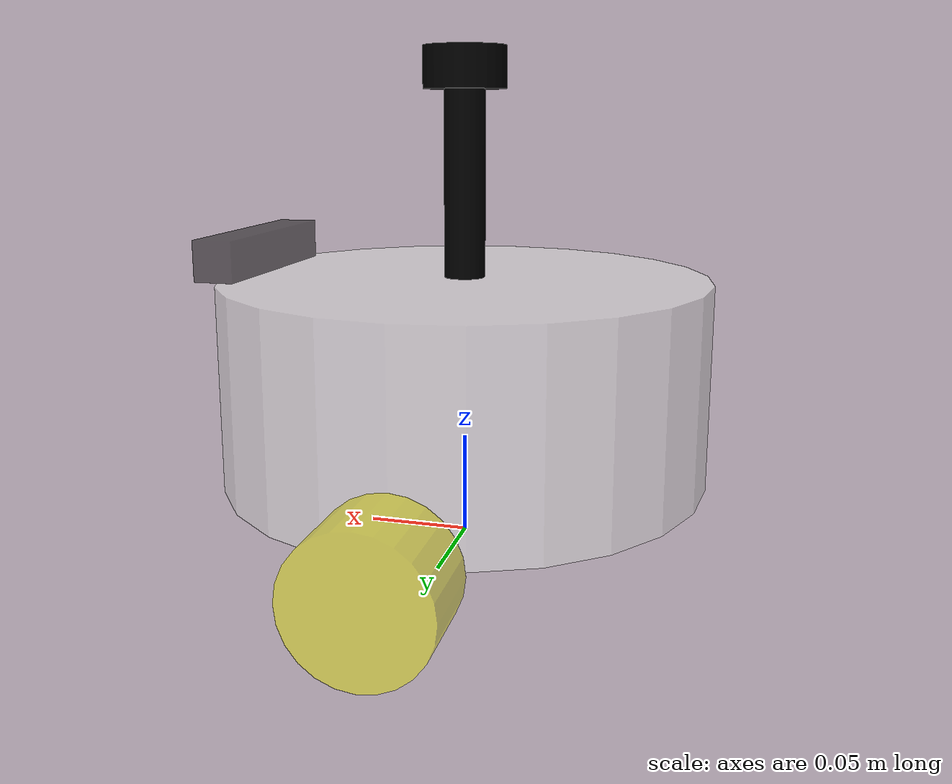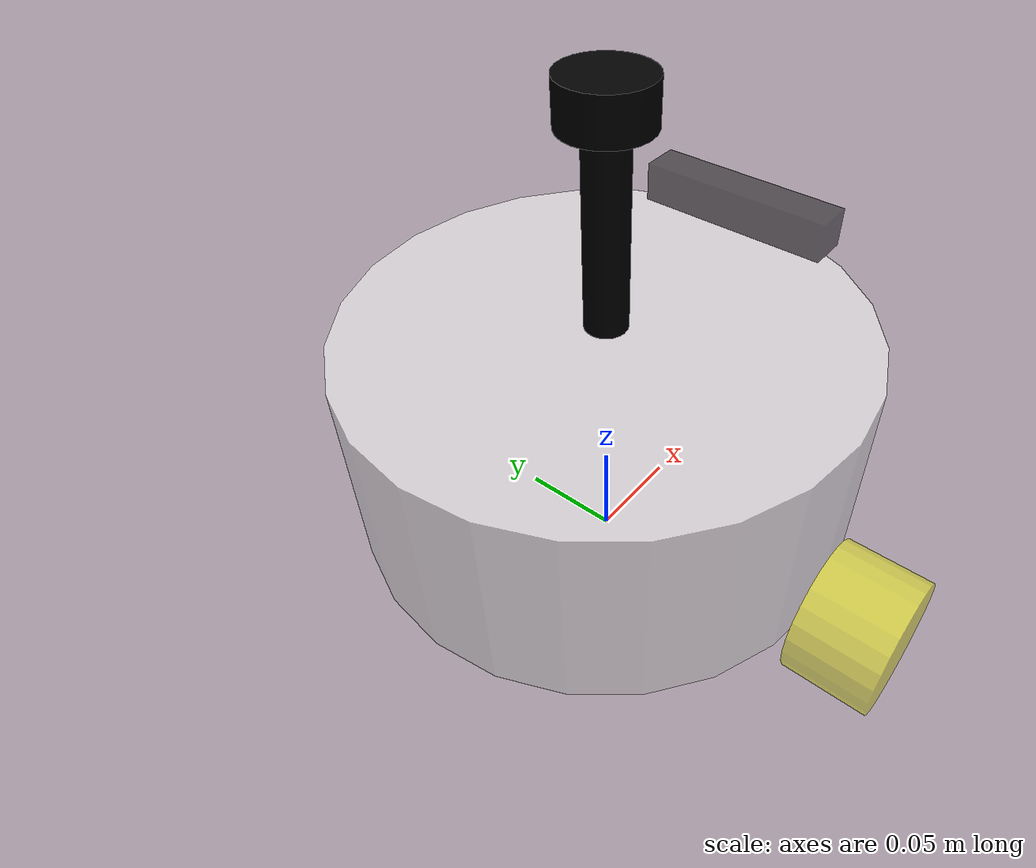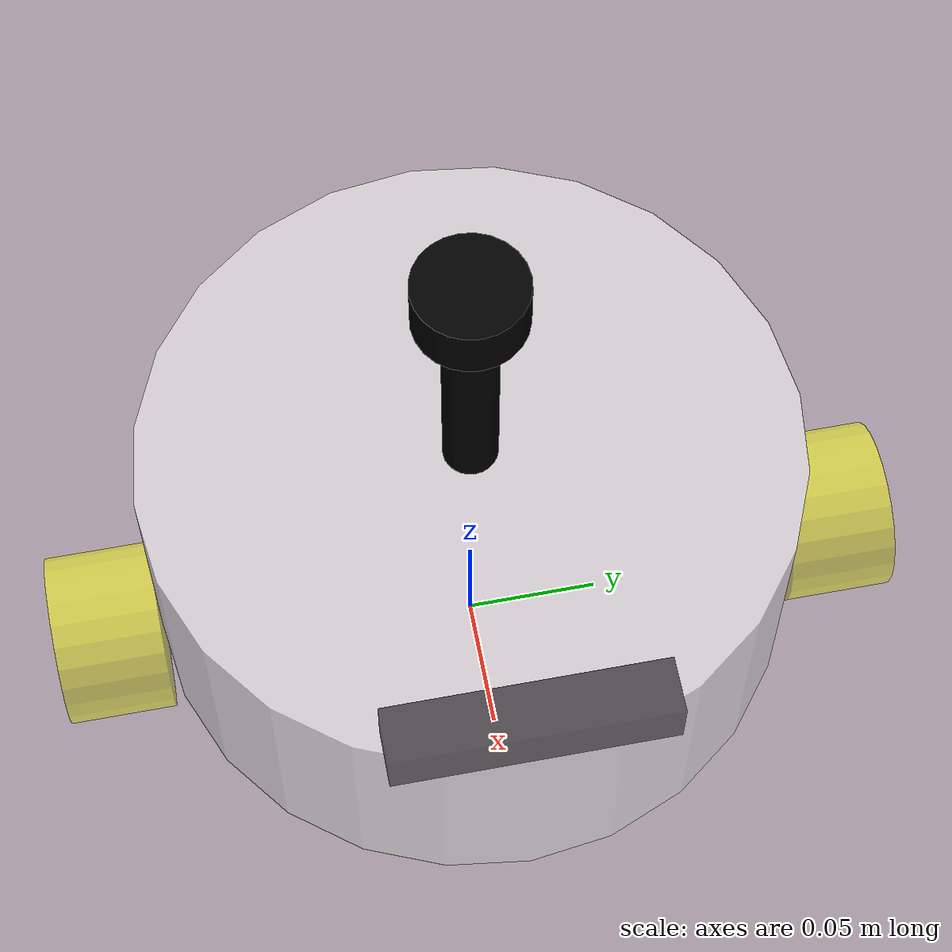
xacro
<?xml version="1.0"?>
<robot xmlns:xacro="http://www.ros.org/wiki/xacro" name="fishbot">
<xacro:include filename="$(find fishbot_description)/urdf/fishbot/base.urdf.xacro"/>
<xacro:include filename="$(find fishbot_description)/urdf/fishbot/base_footprint.urdf.xacro"/>
<xacro:include filename="$(find fishbot_description)/urdf/fishbot/sensor/laser.urdf.xacro"/>
<xacro:include filename="$(find fishbot_description)/urdf/fishbot/sensor/camera.urdf.xacro"/>
<xacro:include filename="$(find fishbot_description)/urdf/fishbot/sensor/imu.urdf.xacro"/>
<xacro:include filename="$(find fishbot_description)/urdf/actuator/wheel.urdf.xacro"/>
<xacro:include filename="$(find fishbot_description)/urdf/actuator/caster.urdf.xacro"/>
<xacro:include filename="$(find fishbot_description)/urdf/fishbot/plugins/gazebo_sensor_plugins.xacro"/>
<xacro:include filename="$(find fishbot_description)/urdf/fishbot/fishbot.ros2_control.xacro" />

<!-- 车体：半径 0.12、高 0.10 → 底面 z=-0.05，顶面 z=+0.05；质量 1.0kg -->
<xacro:base_xacro radius="0.12" length="0.10" mass="1.0"/>

<xacro:base_footprint_xacro height="0.082"/>

<!-- 传感器 -->
<xacro:imu_xacro xyz="0 0 0.02" mass="0.01"/>
<xacro:laser_xacro xyz="0 0.0 0.1" cylinder_mass="0.01" laser_mass="0.03"/>
<!-- 相机盒子高 0.02，顶面 z=0.05，故 z=0.06 时底面正好贴合顶面；
     x=0.11 时盒子占 x∈[0.10,0.12]，外侧面与半径 0.12 的圆柱面齐平 -->
<xacro:camera_xacro xyz="0.11 0.0 0.06" mass="0.01"/>

<!-- ============ 左右差速驱动轮：半径 0.032、宽 0.04、各 0.1kg ============
     轮底 z = -0.05 - 0.032 = -0.082  ← 这就是"地面"的高度
     y = ±(0.12 + 0.04/2) = ±0.14，轮子内侧面正好贴住半径 0.12 的车体侧面 -->
<xacro:wheel_xacro name="left"  xyz="0.0  0.14 -0.05" radius="0.032" length="0.04" mass="0.1"/>
<xacro:wheel_xacro name="right" xyz="0.0 -0.14 -0.05" radius="0.032" length="0.04" mass="0.1"/>

<!-- ============ 前后万向支撑轮：小球半径 0.016、各 0.01kg ============
     球心 z = -0.082 + 0.016 = -0.066，球底与轮底齐平（都在 z=-0.082）
     球顶 z = -0.05，恰好与车体底面（z=-0.05）相切，像顶在底盘下面的一颗钢珠 -->
<xacro:caster_xacro name="front" xyz="0.08  0.0 -0.066" radius="0.016" mass="0.01"/>
<xacro:caster_xacro name="rear"  xyz="-0.08 0.0 -0.066" radius="0.016" mass="0.01"/>

<xacro:gazebo_sensor_plugin/>
<xacro:fishbot_ros2_control />
</robot>

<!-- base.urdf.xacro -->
<robot xmlns:xacro="http://www.ros.org/wiki/xacro">
    <!-- 官方做法：每个部件文件自己 include 一次惯性宏，这样单个文件也能独立展开 -->
    <xacro:include filename="$(find fishbot_description)/urdf/fishbot/common_inertia.xacro"/>

    <!-- ================= base_link 宏定义 ================= -->
    <xacro:macro name="base_xacro" params="radius length mass">
        <link name="base_link">
            <xacro:cylinder_inertia m="${mass}" r="${radius}" h="${length}"/>

            <visual>
                <origin xyz="0 0 0" rpy="0 0 0"/>
                <geometry>
                    <cylinder radius="${radius}" length="${length}"/>
                </geometry>
                <material name="blue">
                    <color rgba="1.0 1.0 1.0 0.5"/>
                </material>
            </visual>

            <!-- collision：碰撞属性，Gazebo 里真正参与物理计算的"硬外壳"
                 这里和 visual 用同一套几何参数；为了省算力也可以简化成更粗的形状，
                 但绝不能比 visual 大，否则机器人会看起来"悬空" -->
            <collision>
                <origin xyz="0 0 0" rpy="0 0 0"/>
                <geometry>
                    <cylinder radius="${radius}" length="${length}"/>
                </geometry>
            </collision>
        </link>
    </xacro:macro>

    <!-- base_footprint（虚拟接地部件）已经独立到 base_footprint.urdf.xacro -->

</robot>

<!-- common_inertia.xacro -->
<robot xmlns:xacro="http://www.ros.org/wiki/xacro">

    <xacro:macro name="box_inertia" params="m w h d rpy:='0 0 0'">
        <inertial>
            <origin xyz="0 0 0" rpy="${rpy}"/>
            <mass value="${m}"/>
            <inertia ixx="${m*(h*h+d*d)/12}" ixy="0.0" ixz="0.0"
                     iyy="${m*(w*w+d*d)/12}" iyz="0.0"
                     izz="${m*(w*w+h*h)/12}"/>
        </inertial>
    </xacro:macro>

    <xacro:macro name="cylinder_inertia" params="m r h rpy:='0 0 0'">
        <inertial>
            <origin xyz="0 0 0" rpy="${rpy}"/>
            <mass value="${m}"/>
            <inertia ixx="${m*(3*r*r+h*h)/12}" ixy="0.0" ixz="0.0"
                     iyy="${m*(3*r*r+h*h)/12}" iyz="0.0"
                     izz="${m*r*r/2}"/>
        </inertial>
    </xacro:macro>

    <xacro:macro name="sphere_inertia" params="m r rpy:='0 0 0'">
        <inertial>
            <origin xyz="0 0 0" rpy="${rpy}"/>
            <mass value="${m}"/>
            <inertia ixx="${2*m*r*r/5}" ixy="0.0" ixz="0.0"
                     iyy="${2*m*r*r/5}" iyz="0.0"
                     izz="${2*m*r*r/5}"/>
        </inertial>
    </xacro:macro>

</robot>

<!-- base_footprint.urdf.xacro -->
<robot xmlns:xacro="http://www.ros.org/wiki/xacro">

    <xacro:macro name="base_footprint_xacro" params="height">
        <link name="base_footprint"/>

        <joint name="base_joint" type="fixed">
            <parent link="base_footprint"/>
            <child link="base_link"/>
            <origin xyz="0 0 ${height}" rpy="0 0 0"/>
        </joint>
    </xacro:macro>

</robot>

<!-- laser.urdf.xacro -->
<robot xmlns:xacro="http://www.ros.org/wiki/xacro">
    <xacro:include filename="$(find fishbot_description)/urdf/fishbot/common_inertia.xacro"/>

    <!-- ================= laser_link 宏定义 ================= -->
    <xacro:macro name="laser_xacro" params="xyz cylinder_mass laser_mass">
        <link name="laser_cylinder_link">
            <xacro:cylinder_inertia m="${cylinder_mass}" r="0.01" h="0.10"/>

            <visual>
                <!-- visual 的 origin 是相对本 link 坐标系，偏移只写在 joint 上，这里必须为 0 -->
                <origin xyz="0 0 0" rpy="0 0 0"/>
                <geometry>
                     <cylinder radius="0.01" length="0.10"/>
                </geometry>
                <material name="black">
                    <color rgba="0.0 0.0 0.0 1.0"/>
                </material>
            </visual>

            <!-- 雷达支杆的碰撞体 -->
            <collision>
                <origin xyz="0 0 0" rpy="0 0 0"/>
                <geometry>
                     <cylinder radius="0.01" length="0.10"/>
                </geometry>
            </collision>
        </link>

        <link name="laser_link">
            <xacro:cylinder_inertia m="${laser_mass}" r="0.02" h="0.02"/>

            <visual>
                <!-- 同 laser_cylinder_link：本 link 的几何体就在自己的坐标系原点，
                     相对杆子的高度由 laser_joint 的 origin(0,0,0.05) 决定 -->
                <origin xyz="0 0 0" rpy="0 0 0"/>
                <geometry>
                     <cylinder radius="0.02" length="0.02"/>
                </geometry>
                <material name="black">
                    <color rgba="0.0 0.0 0.0 1.0"/>
                </material>
            </visual>

            <!-- 雷达本体的碰撞体 -->
            <collision>
                <origin xyz="0 0 0" rpy="0 0 0"/>
                <geometry>
                     <cylinder radius="0.02" length="0.02"/>
                </geometry>
            </collision>
        </link>

        <joint name="laser_joint" type="fixed">
            <parent link="laser_cylinder_link"/>
            <child link="laser_link"/>
            <origin xyz="0.0 0.0 0.05" rpy="0 0 0"/>
        </joint>

        <joint name="laser_cylinder_joint" type="fixed">
            <parent link="base_link"/>
            <child link="laser_cylinder_link"/>
            <origin xyz="${xyz}" rpy="0 0 0"/>
        </joint>
        <gazebo reference="laser_cylinder_link">
        <material>Gazebo/Black</material>
        </gazebo>
        <gazebo reference="laser_link">
        <material>Gazebo/Black</material>
        </gazebo>
    </xacro:macro>

</robot>

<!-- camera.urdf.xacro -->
<robot xmlns:xacro="http://www.ros.org/wiki/xacro">
    <xacro:include filename="$(find fishbot_description)/urdf/fishbot/common_inertia.xacro"/>

    <!-- ================= camera_link 宏定义 ================= -->
    <xacro:macro name="camera_xacro" params="xyz mass">
        <link name="camera_link">
            <xacro:box_inertia m="${mass}" w="0.02" h="0.10" d="0.02"/>

            <visual>
                <!-- visual 的 origin 是相对本 link 坐标系，偏移只写在 joint 上，这里必须为 0 -->
                <origin xyz="0 0 0" rpy="0 0 0"/>
                <geometry>
                    <box size="0.02 0.10 0.02"/>
                </geometry>
                <material name="black">
                    <color rgba="0.0 0.0 0.0 0.5"/>
                </material>
            </visual>

            <!-- collision 与 visual 保持同一套几何和 origin -->
            <collision>
                <origin xyz="0 0 0" rpy="0 0 0"/>
                <geometry>
                    <box size="0.02 0.10 0.02"/>
                </geometry>
            </collision>
        </link>
        <link name="camera_optical_link"></link>

        <joint name="camera_joint" type="fixed">
            <parent link="base_link"/>
            <child link="camera_link"/>
            <origin xyz="${xyz}" rpy="0 0 0"/>
        </joint>

        <joint name="camera_optical_joint" type="fixed">
            <parent link="camera_link"/>
            <child link="camera_optical_link"/>
            <origin xyz="0 0 0" rpy="${-pi/2} 0 ${-pi/2}"/>
        </joint>
    </xacro:macro>

</robot>

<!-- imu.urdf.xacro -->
<robot xmlns:xacro="http://www.ros.org/wiki/xacro">

    <!-- ================= imu_link 宏定义 ================= -->
    <xacro:macro name="imu_xacro" params="xyz">
        <link name="imu_link">
            <visual>
                <!-- visual 的 origin 是相对本 link 坐标系，偏移只写在 joint 上，这里必须为 0 -->
                <origin xyz="0 0 0" rpy="0 0 0"/>
                <geometry>
                    <box size="0.02 0.02 0.02"/>
                </geometry>
                <material name="black">
                    <color rgba="0.0 0.0 0.0 0.5"/>
                </material>
            </visual>

            <!-- collision 与 visual 保持同一套几何和 origin -->
            <collision>
                <origin xyz="0 0 0" rpy="0 0 0"/>
                <geometry>
                    <box size="0.02 0.02 0.02"/>
                </geometry>
            </collision>
        </link>

        <joint name="imu_joint" type="fixed">
            <parent link="base_link"/>
            <child link="imu_link"/>
            <origin xyz="${xyz}" rpy="0 0 0"/>
        </joint>
    </xacro:macro>

</robot>

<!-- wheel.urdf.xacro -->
纯文本

<?xml version="1.0"?>
<robot xmlns:xacro="http://www.ros.org/wiki/xacro">
    <xacro:include filename="$(find fishbot_description)/urdf/fishbot/common_inertia.xacro"/>

    <xacro:macro name="wheel_xacro" params="name xyz radius length mass">
        <link name="${name}_wheel_link">
            <!-- 惯性宏按"圆柱轴向为 Z"推导，而轮子被 rpy 转到了 Y 向，
                 所以要把同样的旋转传给宏（教程里没写这一项）。
                 漏掉的话 izz（绕轮轴的转动惯量）会落到 Z 轴上，仿真里轮子会发飘 -->
            <xacro:cylinder_inertia m="${mass}" r="${radius}" h="${length}" rpy="1.57079 0 0"/>

            <visual>
                <!-- 圆柱默认轴向是 Z，绕 X 轴转 90° 后轴向变成 Y，轮子才立得起来。
                     这里的 rpy 只管"几何体朝向"，不是位置偏移，所以放在 visual 里是对的，
                     位置偏移依然只由 joint 的 origin 提供，避免偏移被算两遍。 -->
                <origin xyz="0 0 0" rpy="1.57079 0 0"/>
                <geometry>
                    <cylinder radius="${radius}" length="${length}"/>
                </geometry>
                <material name="yellow">
                    <color rgba="1.0 1.0 0.0 0.5"/>
                </material>
            </visual>

            <!-- 碰撞体必须把 rpy="1.57079 0 0" 一起复制过来，
                 否则碰撞圆柱会立着（轴向 Z），轮子在地面上会"陷进去" -->
            <collision>
                <origin xyz="0 0 0" rpy="1.57079 0 0"/>
                <geometry>
                    <cylinder radius="${radius}" length="${length}"/>
                </geometry>
            </collision>
        </link>

        <!-- 驱动轮的摩擦配置（官方 chapt6 取值）：摩擦给得很大，
             保证轮子能"抓住"地面把车推走，而不是原地打滑。
             mu1/mu2 摩擦系数，kp/kd 接触刚性/阻尼 -->
        <gazebo reference="${name}_wheel_link">
            <mu1 value="20.0"/>
            <mu2 value="20.0"/>
            <kp value="1000000000.0"/>
            <kd value="1.0"/>
        </gazebo>

        <!-- 驱动轮要能一直转，所以用 continuous（而不是 revolute）
             axis 写在 child link 坐标系里，且 joint 的 origin 没有旋转，
             所以 (0,1,0) 就是绕 base_link 的 Y 轴转。
             左右轮都用 +Y，这样"同号角速度 = 两个轮子同时向前"，符合差速模型的约定 -->
        <joint name="${name}_wheel_joint" type="continuous">
            <parent link="base_link"/>
            <child link="${name}_wheel_link"/>
            <origin xyz="${xyz}" rpy="0 0 0"/>
            <axis xyz="0 1 0"/>

            <dynamics damping="0.1" friction="0.1"/>
        </joint>
    </xacro:macro>

</robot>

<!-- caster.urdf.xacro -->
<robot xmlns:xacro="http://www.ros.org/wiki/xacro">
    <xacro:include filename="$(find fishbot_description)/urdf/fishbot/common_inertia.xacro"/>

    <xacro:macro name="caster_xacro" params="name xyz radius mass">
        <link name="${name}_caster_link">
            <xacro:sphere_inertia m="${mass}" r="${radius}"/>

            <visual>
                <origin xyz="0 0 0" rpy="0 0 0"/>
                <geometry>
                    <sphere radius="${radius}"/>
                </geometry>
                <material name="black">
                    <color rgba="0.0 0.0 0.0 0.5"/>
                </material>
            </visual>

            <!-- collision 与 visual 保持同一套几何和 origin -->
            <collision>
                <origin xyz="0 0 0" rpy="0 0 0"/>
                <geometry>
                    <sphere radius="${radius}"/>
                </geometry>
            </collision>
        </link>

        <gazebo reference="${name}_caster_link">
            <mu1 value="0.0"/>
            <mu2 value="0.0"/>
            <kp value="1000000000.0"/>
            <kd value="1.0"/>
        </gazebo>

        <!-- 支撑轮只负责"撑住车身 + 被动跟随"，
             在 URDF 里用 fixed 就够了（真要让它滚，得配 Gazebo 的摩擦/万向轮插件，
             单纯在 URDF 里加连续关节反而会多出两个自由度） -->
        <joint name="${name}_caster_joint" type="fixed">
            <parent link="base_link"/>
            <child link="${name}_caster_link"/>
            <origin xyz="${xyz}" rpy="0 0 0"/>
        </joint>
    </xacro:macro>

</robot>
